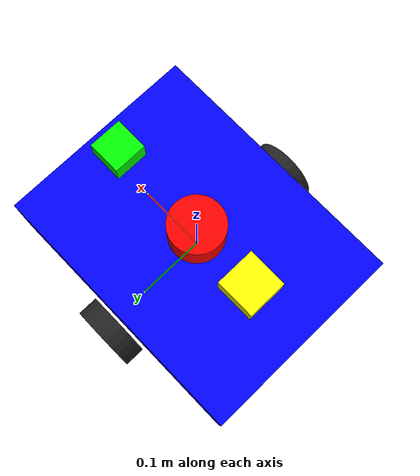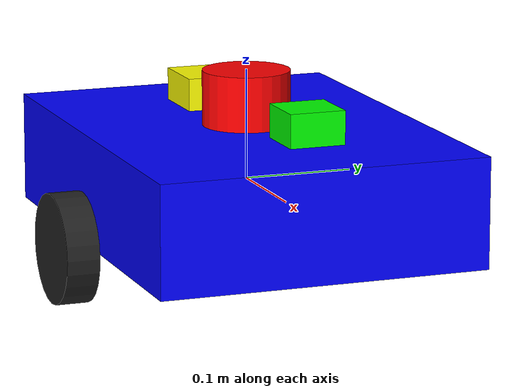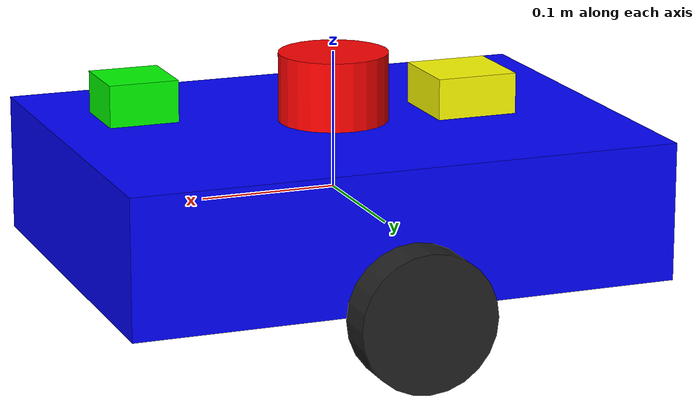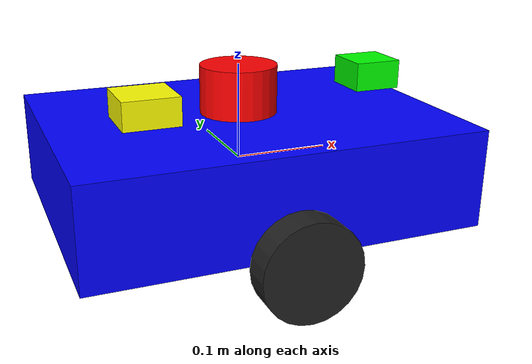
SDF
<sdf version='1.12'>
  <model name='simple_mobile_robot'>
    <link name='base_link'>
      <inertial>
        <pose>-0.0044642857142857149 0 0.0026785714285714282 0 0 0</pose>
        <mass>5.5999999999999996</mass>
        <inertia>
          <ixx>0.10353148842857141</ixx>
          <ixy>0</ixy>
          <ixz>-0.0027669642857142858</ixz>
          <iyy>0.1111698812857143</iyy>
          <iyz>0</iyz>
          <izz>0.1081050598571429</izz>
        </inertia>
      </inertial>
      <collision name='base_link_collision'>
        <pose>0 0 0 0 0 0</pose>
        <geometry>
          <box>
            <size>0.40000000000000002 0.29999999999999999 0.10000000000000001</size>
          </box>
        </geometry>
        <surface>
          <contact>
            <ode/>
          </contact>
          <friction>
            <ode/>
          </friction>
        </surface>
      </collision>
      <collision name='base_link_fixed_joint_lump__caster_wheel_collision_1'>
        <pose>-0.14999999999999999 0 -0.070000000000000007 0 0 0</pose>
        <geometry>
          <sphere>
            <radius>0.029999999999999999</radius>
          </sphere>
        </geometry>
      </collision>
      <collision name='base_link_fixed_joint_lump__depth_camera_link_collision_2'>
        <pose>0.14999999999999999 0 0.080000000000000002 0 0 0</pose>
        <geometry>
          <box>
            <size>0.050000000000000003 0.050000000000000003 0.029999999999999999</size>
          </box>
        </geometry>
      </collision>
      <collision name='base_link_fixed_joint_lump__imu_link_collision_3'>
        <pose>-0.10000000000000001 0 0.059999999999999998 0 0 0</pose>
        <geometry>
          <box>
            <size>0.059999999999999998 0.059999999999999998 0.040000000000000001</size>
          </box>
        </geometry>
      </collision>
      <collision name='base_link_fixed_joint_lump__lidar_link_collision_4'>
        <pose>0 0 0.074999999999999997 0 0 0</pose>
        <geometry>
          <cylinder>
            <length>0.050000000000000003</length>
            <radius>0.040000000000000001</radius>
          </cylinder>
        </geometry>
        <surface>
          <contact>
            <ode/>
          </contact>
          <friction>
            <ode/>
          </friction>
        </surface>
      </collision>
      <visual name='base_link_visual'>
        <pose>0 0 0 0 0 0</pose>
        <geometry>
          <box>
            <size>0.40000000000000002 0.29999999999999999 0.10000000000000001</size>
          </box>
        </geometry>
        <material>
          <diffuse>0 0 1 1</diffuse>
          <ambient>0 0 1 1</ambient>
        </material>
      </visual>
      <visual name='base_link_fixed_joint_lump__caster_wheel_visual_1'>
        <pose>-0.14999999999999999 0 -0.070000000000000007 0 0 0</pose>
        <geometry>
          <sphere>
            <radius>0.029999999999999999</radius>
          </sphere>
        </geometry>
        <material>
          <diffuse>0.625 0.625 0.625 1</diffuse>
          <ambient>0.625 0.625 0.625 1</ambient>
        </material>
      </visual>
      <visual name='base_link_fixed_joint_lump__depth_camera_link_visual_2'>
        <pose>0.14999999999999999 0 0.080000000000000002 0 0 0</pose>
        <geometry>
          <box>
            <size>0.050000000000000003 0.050000000000000003 0.029999999999999999</size>
          </box>
        </geometry>
        <material>
          <diffuse>0 1 0 1</diffuse>
          <ambient>0 1 0 1</ambient>
        </material>
      </visual>
      <visual name='base_link_fixed_joint_lump__imu_link_visual_3'>
        <pose>-0.10000000000000001 0 0.059999999999999998 0 0 0</pose>
        <geometry>
          <box>
            <size>0.059999999999999998 0.059999999999999998 0.040000000000000001</size>
          </box>
        </geometry>
        <material>
          <diffuse>1 1 0 1</diffuse>
          <ambient>1 1 0 1</ambient>
        </material>
      </visual>
      <visual name='base_link_fixed_joint_lump__lidar_link_visual_4'>
        <pose>0 0 0.074999999999999997 0 0 0</pose>
        <geometry>
          <cylinder>
            <length>0.050000000000000003</length>
            <radius>0.040000000000000001</radius>
          </cylinder>
        </geometry>
        <material>
          <diffuse>1 0 0 1</diffuse>
          <ambient>1 0 0 1</ambient>
        </material>
      </visual>
      <sensor name='imu' type='imu'>
        <always_on>true</always_on>
        <update_rate>100</update_rate>
        <visualize>true</visualize>
        <topic>/imu</topic>
        <enable_metrics>true</enable_metrics>
        <imu/>
      </sensor>
      <sensor name='lidar_sensor' type='gpu_lidar'>
        <always_on>true</always_on>
        <update_rate>10</update_rate>
        <visualize>true</visualize>
        <topic>scan</topic>
        <lidar>
          <scan>
            <horizontal>
              <samples>720</samples>
              <resolution>1</resolution>
              <min_angle>-3.1415899999999999</min_angle>
              <max_angle>3.1415899999999999</max_angle>
            </horizontal>
          </scan>
          <range>
            <min>0.10000000000000001</min>
            <max>10</max>
            <resolution>0.01</resolution>
          </range>
        </lidar>
        <pose>0 0 0.074999999999999997 0 0 0</pose>
        <gz_frame_id>lidar_link</gz_frame_id>
      </sensor>
    </link>
    <joint name='left_wheel_joint' type='revolute'>
      <pose relative_to='base_link'>0 0.17000000000000001 -0.050000000000000003 1.5708 0 0</pose>
      <parent>base_link</parent>
      <child>left_wheel</child>
      <axis>
        <xyz>0 1 0</xyz>
        <limit>
          <lower>-inf</lower>
          <upper>inf</upper>
        </limit>
        <dynamics>
          <spring_reference>0</spring_reference>
          <spring_stiffness>0</spring_stiffness>
        </dynamics>
      </axis>
    </joint>
    <link name='left_wheel'>
      <pose relative_to='left_wheel_joint'>0 0 0 0 0 0</pose>
      <inertial>
        <pose>0 0 0 0 0 0</pose>
        <mass>0.5</mass>
        <inertia>
          <ixx>0.001</ixx>
          <ixy>0</ixy>
          <ixz>0</ixz>
          <iyy>0.001</iyy>
          <iyz>0</iyz>
          <izz>0.001</izz>
        </inertia>
      </inertial>
      <collision name='left_wheel_collision'>
        <pose>0 0 0 0 0 0</pose>
        <geometry>
          <cylinder>
            <length>0.029999999999999999</length>
            <radius>0.050000000000000003</radius>
          </cylinder>
        </geometry>
      </collision>
      <visual name='left_wheel_visual'>
        <pose>0 0 0 0 0 0</pose>
        <geometry>
          <cylinder>
            <length>0.029999999999999999</length>
            <radius>0.050000000000000003</radius>
          </cylinder>
        </geometry>
        <material>
          <diffuse>0.125 0.125 0.125 1</diffuse>
          <ambient>0.125 0.125 0.125 1</ambient>
        </material>
      </visual>
    </link>
    <joint name='right_wheel_joint' type='revolute'>
      <pose relative_to='base_link'>0 -0.17000000000000001 -0.050000000000000003 1.5708 0 0</pose>
      <parent>base_link</parent>
      <child>right_wheel</child>
      <axis>
        <xyz>0 1 0</xyz>
        <limit>
          <lower>-inf</lower>
          <upper>inf</upper>
        </limit>
        <dynamics>
          <spring_reference>0</spring_reference>
          <spring_stiffness>0</spring_stiffness>
        </dynamics>
      </axis>
    </joint>
    <link name='right_wheel'>
      <pose relative_to='right_wheel_joint'>0 0 0 0 0 0</pose>
      <inertial>
        <pose>0 0 0 0 0 0</pose>
        <mass>0.5</mass>
        <inertia>
          <ixx>0.001</ixx>
          <ixy>0</ixy>
          <ixz>0</ixz>
          <iyy>0.001</iyy>
          <iyz>0</iyz>
          <izz>0.001</izz>
        </inertia>
      </inertial>
      <collision name='right_wheel_collision'>
        <pose>0 0 0 0 0 0</pose>
        <geometry>
          <cylinder>
            <length>0.029999999999999999</length>
            <radius>0.050000000000000003</radius>
          </cylinder>
        </geometry>
      </collision>
      <visual name='right_wheel_visual'>
        <pose>0 0 0 0 0 0</pose>
        <geometry>
          <cylinder>
            <length>0.029999999999999999</length>
            <radius>0.050000000000000003</radius>
          </cylinder>
        </geometry>
        <material>
          <diffuse>0.125 0.125 0.125 1</diffuse>
          <ambient>0.125 0.125 0.125 1</ambient>
        </material>
      </visual>
    </link>
    <plugin name='gz_ros2_control::GazeboSimROS2ControlPlugin' filename='gz_ros2_control-system'>
      <ros>
        <namespace/>
      </ros>
      <parameters>/media/zbook/Data/ros2_ws/install/simple_mobile_robot/share/simple_mobile_robot/config/controllers.yaml</parameters>
    </plugin>
    <frame name='caster_wheel_joint' attached_to='base_link'>
      <pose>-0.14999999999999999 0 -0.070000000000000007 0 0 0</pose>
    </frame>
    <frame name='caster_wheel' attached_to='caster_wheel_joint'>
      <pose>0 0 0 0 0 0</pose>
    </frame>
    <frame name='depth_camera_joint' attached_to='base_link'>
      <pose>0.14999999999999999 0 0.080000000000000002 0 0 0</pose>
    </frame>
    <frame name='depth_camera_link' attached_to='depth_camera_joint'>
      <pose>0 0 0 0 0 0</pose>
    </frame>
    <frame name='imu_joint' attached_to='base_link'>
      <pose>-0.10000000000000001 0 0.059999999999999998 0 0 0</pose>
    </frame>
    <frame name='imu_link' attached_to='imu_joint'>
      <pose>0 0 0 0 0 0</pose>
    </frame>
    <frame name='lidar_joint' attached_to='base_link'>
      <pose>0 0 0.074999999999999997 0 0 0</pose>
    </frame>
    <frame name='lidar_link' attached_to='lidar_joint'>
      <pose>0 0 0 0 0 0</pose>
    </frame>
  </model>
</sdf>
